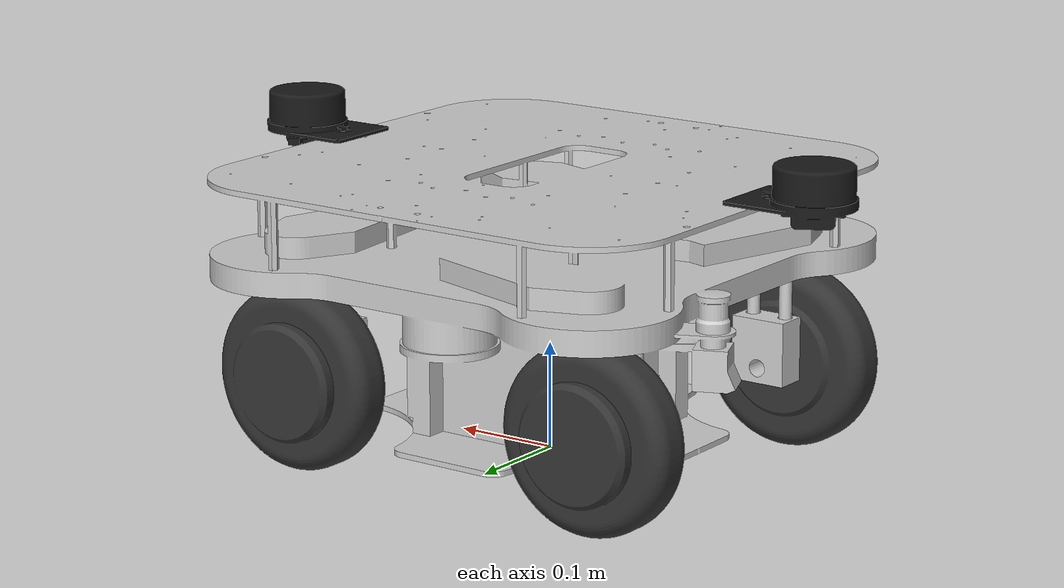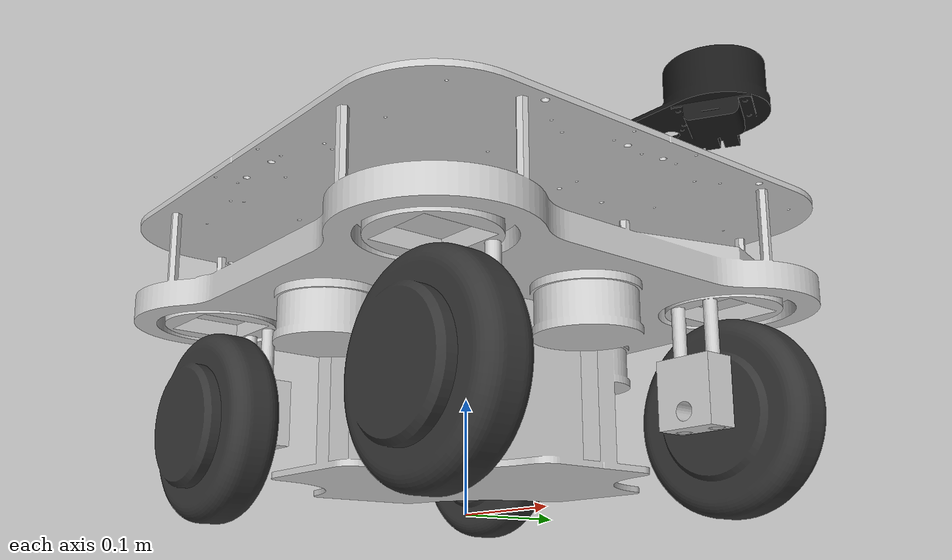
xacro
<?xml version="1.0"?>
<robot name="x120a" xmlns:xacro="http://www.ros.org/wiki/xacro">

  <!-- Suspension values from the selected Isaac model, in SI units. -->
  <xacro:property name="suspension_stiffness" value="58800"/>
  <xacro:property name="suspension_damping" value="300.0"/>
  <xacro:property name="suspension_friction" value="0.5"/>
  <xacro:property name="suspension_stroke" value="0.0135"/>
  <xacro:property name="suspension_force" value="793.8"/>
  <!-- Actuator values from the selected Isaac USD, SI units. -->
  <xacro:property name="wheel_max_torque" value="18.0"/>
  <xacro:property name="wheel_max_velocity" value="25.8823529412"/>
  <xacro:property name="wheel_max_acceleration" value="19.4117647059"/>
  <xacro:property name="wheel_drive_damping" value="1000.0"/>
  <xacro:property name="steering_max_torque" value="5.325"/>
  <xacro:property name="steering_max_velocity" value="18.8495559215"/>
  <xacro:property name="steering_max_acceleration" value="56.5486677646"/>
  <xacro:property name="steering_drive_damping" value="1000.0"/>
  <xacro:property name="steering_position_p_gain" value="12.56"/>

   <xacro:include filename="$(find fwdsrover_description)/urdf/materials.xacro"/>
   <xacro:include filename="$(find fwdsrover_description)/urdf/actuators.xacro"/>
   <xacro:include filename="$(find fwdsrover_description)/urdf/x120a.gazebo"/>

  <!-- Options are selected here, without launch/YAML tuning overrides. -->
  <xacro:property name="enable_tg30" value="true"/>
  <xacro:if value="${enable_tg30}">
    <xacro:include filename="$(find vs_rover_options_description)/urdf/lrf/tg30_x120a.xacro"/>
  </xacro:if>
  <!-- OPTION: Bumper -->
  <!-- A camera-stay model has not been supplied for this rover. -->

  <link name="base_footprint"/>

  <link name="base_link">
    <inertial>
      <origin xyz="0 0 0.075"/>
      <mass value="31.499998"/>
      <inertia
        ixx="0.12128076034316"
        ixy="0.00120136894281"
        ixz="-0.00048291958805"
        iyy="0.12342190392259"
        iyz="-0.00033717869722"
        izz="0.13609112422642"/>
    </inertial>
    <visual>
      <geometry>
        <mesh filename="package://fwdsrover_description/meshes/x120a/base_link.stl"
              scale="0.001 0.001 0.001"/>
      </geometry>
      <material name="silver"/>
    </visual>
    <collision>
      <origin xyz="0 0 0.206"/>
      <geometry>
        <box size="0.476 0.476 0.070"/>
      </geometry>
    </collision>
  </link>

  <joint name="base_joint" type="fixed">
    <origin xyz="0 0 0.024"/>
    <parent link="base_footprint"/>
    <child link="base_link"/>
  </joint>

  <!-- Auto inertia macros -->

  <!-- Solid cylinder inertia (axis Z) -->
  <xacro:macro name="inertia_cylinder" params="m r h">
    <xacro:property name="Izz" value="${0.5 * m * r * r}"/>
    <xacro:property name="Ixx" value="${(1.0/12.0) * m * (3*r*r + h*h)}"/>
    <inertia ixx="${Ixx}" ixy="0" ixz="0"
             iyy="${Ixx}" iyz="0"
             izz="${Izz}"/>
  </xacro:macro>

  <!-- Solid box inertia -->
  <xacro:macro name="inertia_box" params="m x y z">
    <inertia
      ixx="${(1.0/12.0) * m * (y*y + z*z)}"
      ixy="0" ixz="0"
      iyy="${(1.0/12.0) * m * (x*x + z*z)}"
      iyz="0"
      izz="${(1.0/12.0) * m * (x*x + y*y)}"/>
  </xacro:macro>

  <!-- Link macros (auto inertia) -->

  <!-- Joint base: cylinder -->
  <xacro:macro name="joint_link" params="name m r h">
    <link name="${name}">
      <inertial>
        <origin xyz="0 0 -0.05"/>
        <mass value="${m}"/>
        <xacro:inertia_cylinder m="${m}" r="${r}" h="${h}"/>
      </inertial>
      <visual>
        <geometry>
          <mesh filename="package://fwdsrover_description/meshes/x120a/joint.stl"
                scale="0.001 0.001 0.001"/>
        </geometry>
        <material name="silver"/>
      </visual>
      <collision>
        <origin xyz="0 0 -0.007"/>
        <geometry>
          <cylinder radius="${r}" length="${h}"/>
        </geometry>
      </collision>
    </link>
  </xacro:macro>

  <!-- Suspension: box -->
  <xacro:macro name="sus_link" params="name m x y z">
    <link name="${name}">
      <inertial>
        <origin xyz="0 0 0.026"/>
        <mass value="${m}"/>
        <xacro:inertia_box m="${m}" x="${x}" y="${y}" z="${z}"/>
      </inertial>
      <visual>
        <geometry>
          <mesh filename="package://fwdsrover_description/meshes/x120a/sus.stl"
                scale="0.001 0.001 0.001"/>
        </geometry>
        <material name="silver"/>
      </visual>
      <collision>
        <origin xyz="0 0 0.03"/>
        <geometry>
          <box size="${x} ${y} ${z}"/>
        </geometry>
      </collision>
    </link>
  </xacro:macro>

  <!-- Joint macros -->

  <xacro:macro name="steering_joint" params="name parent child xyz rpy">
    <joint name="${name}" type="revolute">
      <origin xyz="${xyz}" rpy="${rpy}"/>
      <axis xyz="0 0 1"/>
      <parent link="${parent}"/>
      <child link="${child}"/>
      <limit lower="-6.28319" upper="6.28319" effort="${steering_max_torque}" velocity="${steering_max_velocity}"/>
      <dynamics damping="0.1"/>
    </joint>
  </xacro:macro>

  <xacro:macro name="sus_joint" params="name parent child">
    <joint name="${name}" type="prismatic">
      <origin xyz="0 -0.045 -0.122"/>
      <axis xyz="0 0 1"/>
      <parent link="${parent}"/>
      <child link="${child}"/>
      <limit lower="0.0" upper="${suspension_stroke}" effort="${suspension_force}" velocity="1.0"/>
      <dynamics damping="${suspension_damping}" friction="${suspension_friction}"/>
    </joint>
  </xacro:macro>

  <xacro:macro name="wheel_joint" params="name parent child axis_z">
    <joint name="${name}" type="continuous">
      <origin xyz="0 0.018 0.014" rpy="${radians(-90)} 0 0"/>
      <axis xyz="0 0 ${axis_z}"/>
      <parent link="${parent}"/>
      <child link="${child}"/>
      <limit velocity="${wheel_max_velocity}" effort="${wheel_max_torque}"/>
      <dynamics damping="0.3" friction="0.5"/>
    </joint>
  </xacro:macro>

  <!-- Wheel unit (all auto inertia except base) -->

  <xacro:macro name="wheel_unit"
    params="prefix steering_xyz steering_rpy wheel_axis_z">

    <!-- constants (from original model) -->
    <xacro:property name="joint_m" value="0.2"/>
    <xacro:property name="joint_r" value="0.05"/>
    <xacro:property name="joint_h" value="0.014"/>

    <xacro:property name="sus_m" value="0.1"/>
    <xacro:property name="sus_x" value="0.05"/>
    <xacro:property name="sus_y" value="0.03"/>
    <xacro:property name="sus_z" value="0.06"/>

    <xacro:property name="wheel_m" value="3.0"/>
    <xacro:property name="wheel_r" value="0.085"/>
    <xacro:property name="wheel_h" value="0.045"/>

    <xacro:joint_link name="${prefix}_joint_1"
                      m="${joint_m}" r="${joint_r}" h="${joint_h}"/>

    <xacro:sus_link name="${prefix}_sus_1"
                    m="${sus_m}" x="${sus_x}" y="${sus_y}" z="${sus_z}"/>

    <link name="${prefix}_wheel_1">
      <inertial>
        <origin xyz="0 0 0.026"/>
        <mass value="${wheel_m}"/>
        <xacro:inertia_cylinder m="${wheel_m}" r="${wheel_r}" h="${wheel_h}"/>
      </inertial>
      <visual>
        <geometry>
          <mesh filename="package://fwdsrover_description/meshes/x120a/wheel.stl"
                scale="0.001 0.001 0.001"/>
        </geometry>
        <material name="dark_grey"/>
      </visual>
      <collision>
        <origin xyz="0 0 0.027"/>
        <geometry>
          <cylinder radius="${wheel_r}" length="${wheel_h}"/>
        </geometry>
      </collision>
    </link>

    <xacro:steering_joint
      name="${prefix}_steering_joint"
      parent="base_link"
      child="${prefix}_joint_1"
      xyz="${steering_xyz}"
      rpy="${steering_rpy}"/>

    <xacro:sus_joint
      name="${prefix}_sus_joint"
      parent="${prefix}_joint_1"
      child="${prefix}_sus_1"/>

    <xacro:wheel_joint
      name="${prefix}_wheel_joint"
      parent="${prefix}_sus_1"
      child="${prefix}_wheel_1"
      axis_z="${wheel_axis_z}"/>

  </xacro:macro>

  <!-- Wheel instances -->

  <xacro:wheel_unit prefix="front_left"
                    steering_xyz="0.16 0.16 0.163"
                    steering_rpy="0 0 0"
                    wheel_axis_z="1"/>

  <xacro:wheel_unit prefix="front_right"
                    steering_xyz="0.16 -0.16 0.163"
                    steering_rpy="0 0 ${radians(180)}"
                    wheel_axis_z="-1"/>

  <xacro:wheel_unit prefix="back_right"
                    steering_xyz="-0.16 -0.16 0.163"
                    steering_rpy="0 0 ${radians(180)}"
                    wheel_axis_z="-1"/>

  <xacro:wheel_unit prefix="back_left"
                    steering_xyz="-0.16 0.16 0.163"
                    steering_rpy="0 0 0"
                    wheel_axis_z="1"/>

</robot>

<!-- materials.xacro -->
<robot name="materials" xmlns:xacro="http://www.ros.org/wiki/xacro">

  <material name="silver">
    <color rgba="0.800 0.800 0.800 1.000" />
  </material>

  <material name="dark_silver">
    <color rgba="0.400 0.400 0.400 1.000" />
  </material>

  <material name="dark_grey">
    <color rgba="0.200 0.200 0.200 1.000" />
  </material>

  <material name="black">
    <color rgba="0.100 0.100 0.100 1.000" />
  </material>

</robot>

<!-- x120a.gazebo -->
<robot name="x120a" xmlns:xacro="http://www.ros.org/wiki/xacro">

  <xacro:property name="body_color"  value="Gazebo/Silver"/>
  <xacro:property name="wheel_color" value="Gazebo/DarkGrey"/>

  <gazebo reference="base_link">
    <material>Gazebo/Silver</material>
    <mu1>0.2</mu1>
    <mu2>0.2</mu2>
    <self_collide>false</self_collide>
    <turnGravityOff>false</turnGravityOff>
  </gazebo>

  <xacro:macro name="gazebo_steering" params="joint">
    <gazebo reference="${joint}">
      <material>${body_color}</material>
      <implicitSpringDamper>false</implicitSpringDamper>
      <erp>1.0</erp>
      <cfm>0.0</cfm>
      <limit>
        <erp>1.0</erp>
        <cfm>0.0</cfm>
      </limit>
      <stop_erp>0.99</stop_erp>
      <stop_cfm>0.0</stop_cfm>
    </gazebo>
  </xacro:macro>

  <xacro:macro name="gazebo_suspension" params="joint">
    <gazebo reference="${joint}">
      <implicitSpringDamper>false</implicitSpringDamper>
      <springReference>0.0</springReference>
      <springStiffness>${suspension_stiffness}</springStiffness>
    </gazebo>
  </xacro:macro>

  <xacro:macro name="gazebo_wheel" params="link">
    <gazebo reference="${link}">
      <material>${wheel_color}</material>
      <mu1>0.8</mu1>
      <mu2>0.4</mu2>
      <slip1>0.01</slip1>
      <slip2>0.01</slip2>
      <kp>1e6</kp>
      <kd>1.0</kd>
    </gazebo>
  </xacro:macro>

  <xacro:gazebo_steering joint="front_left_steering_joint"/>
  <xacro:gazebo_steering joint="front_right_steering_joint"/>
  <xacro:gazebo_steering joint="back_right_steering_joint"/>
  <xacro:gazebo_steering joint="back_left_steering_joint"/>

  <!-- Suspension -->
  <xacro:gazebo_suspension joint="front_left_sus_joint"/>
  <xacro:gazebo_suspension joint="front_right_sus_joint"/>
  <xacro:gazebo_suspension joint="back_right_sus_joint"/>
  <xacro:gazebo_suspension joint="back_left_sus_joint"/>

  <!-- Wheels -->
  <xacro:gazebo_wheel link="front_left_wheel_1"/>
  <xacro:gazebo_wheel link="front_right_wheel_1"/>
  <xacro:gazebo_wheel link="back_right_wheel_1"/>
  <xacro:gazebo_wheel link="back_left_wheel_1"/>

</robot>

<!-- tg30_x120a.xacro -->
<robot name="lrf_tg30_x120a" xmlns:xacro="http://ros.org/wiki/xacro">
  <xacro:include filename="$(find vs_rover_options_description)/urdf/lrf/tg30_x120a.gazebo" />

  <!-- placement of TG30 on Megarover Ver.3.0 -->
  <!-- the mesh origin is at centerline of laser, x-axis facing forward -->
  <xacro:property name="tg30_lrf_front_x_offset" value="0.2831" />
  <xacro:property name="tg30_lrf_front_y_offset" value="0.0" />
  <xacro:property name="tg30_lrf_front_z_offset" value="0.272" />
  <xacro:property name="tg30_lrf_back_x_offset" value="-0.2769" />
  <xacro:property name="tg30_lrf_back_y_offset" value="0.0" />
  <xacro:property name="tg30_lrf_back_z_offset" value="0.272" />
  <xacro:property name="tg30_center_of_mass_x" value="-0.004299" />
  <xacro:property name="tg30_center_of_mass_y" value="-0.000337" />
  <xacro:property name="tg30_center_of_mass_z" value="-0.018037" />

  <!-- front LRF sensor joints and links -->
  <joint name="front_lrf_joint" type="fixed">
    <parent link="base_link" />
    <child link="front_lrf_link" />
    <origin xyz="${tg30_lrf_front_x_offset} ${tg30_lrf_front_y_offset} ${tg30_lrf_front_z_offset}" rpy="0 0 0" />
  </joint>

  <link name="front_lrf_link">
    <inertial>
      <origin xyz="${tg30_center_of_mass_x} ${tg30_center_of_mass_y} ${tg30_center_of_mass_z}" rpy="0 0 0" />
      <mass value="0.200" />
      <inertia ixx="0.0001205" iyy="0.0001561" izz="0.0001977"
        ixy="0.00" iyz="0.00"
        ixz="0.00" />
    </inertial>
    <visual>
      <origin xyz="0 0 0" rpy="0 0 0" />
      <geometry>
        <mesh filename="package://vs_rover_options_description/meshes/lrf/tg30.stl" scale="0.001 0.001 0.001" />
      </geometry>
      <material name="black" />
    </visual>
    <collision>
      <origin xyz="0 0 0" rpy="0 0 0" />
      <geometry>
        <mesh filename="package://vs_rover_options_description/meshes/lrf/tg30.stl" scale="0.001 0.001 0.001" />
      </geometry>
    </collision>
  </link>

  <!-- back LRF sensor joints and links -->
  <joint name="back_lrf_joint" type="fixed">
    <parent link="base_link" />
    <child link="back_lrf_link" />
    <origin xyz="${tg30_lrf_back_x_offset} ${tg30_lrf_back_y_offset} ${tg30_lrf_back_z_offset}" rpy="0 0 ${pi}" />
  </joint>

  <link name="back_lrf_link">
    <inertial>
      <origin xyz="${tg30_center_of_mass_x} ${tg30_center_of_mass_y} ${tg30_center_of_mass_z}" rpy="0 0 0" />
      <mass value="0.200" />
      <inertia ixx="0.0001205" iyy="0.0001561" izz="0.0001977"
        ixy="0.00" iyz="0.00"
        ixz="0.00" />
    </inertial>
    <visual>
      <origin xyz="0 0 0" rpy="0 0 0" />
      <geometry>
        <mesh filename="package://vs_rover_options_description/meshes/lrf/tg30.stl" scale="0.001 0.001 0.001" />
      </geometry>
      <material name="black" />
    </visual>
    <collision>
      <origin xyz="0 0 0" rpy="0 0 0" />
      <geometry>
        <mesh filename="package://vs_rover_options_description/meshes/lrf/tg30.stl" scale="0.001 0.001 0.001" />
      </geometry>
    </collision>
  </link>

</robot>

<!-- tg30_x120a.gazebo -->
<robot name="lrf_tg30_x120a" xmlns:xacro="http://www.ros.org/wiki/xacro">

  <xacro:arg name="front_laser_visual" default="false" />
  <xacro:arg name="back_laser_visual" default="false" />

  <xacro:property name="lrf_color" value="Gazebo/FlatBlack" />
  <xacro:property name="DEG_TO_RAD" value="0.01745329251994329577" />
  <xacro:property name="LRF_ANGLE" value="172" />

  <gazebo reference="front_lrf_link">
    <material>${lrf_color}</material>
    <selfCollide>true</selfCollide>
    <sensor name="tg30_lidar_front" type="ray">
        <always_on>true</always_on>
        <visualize>$(arg front_laser_visual)</visualize>
        <pose>0 0 0 0 0 0</pose>
        <update_rate>12</update_rate>
        <ray>
          <scan>
            <horizontal>
              <samples>360</samples>
              <resolution>1.0</resolution>
              <min_angle>${-LRF_ANGLE*DEG_TO_RAD}</min_angle>
              <max_angle>${ LRF_ANGLE*DEG_TO_RAD}</max_angle>
            </horizontal>
          </scan>
          <range>
            <min>0.05</min>
            <max>30.0</max>
            <resolution>0.01</resolution>
          </range>
          <noise>
            <type>gaussian</type>
            <mean>0.0</mean>
            <stddev>0.01</stddev>
          </noise>
        </ray>
        <plugin name="x120a_front_laserscan" filename="libgazebo_ros_ray_sensor.so">
          <ros>
            <remapping>~/out:=scan</remapping>
          </ros>
          <output_type>sensor_msgs/LaserScan</output_type>
          <frame_name>front_lrf_link</frame_name>
        </plugin>
      </sensor>
  </gazebo>

  <gazebo reference="back_lrf_link">
    <material>${lrf_color}</material>
    <selfCollide>true</selfCollide>
    <sensor name="tg30_lidar_back" type="ray">
        <always_on>true</always_on>
        <visualize>$(arg back_laser_visual)</visualize>
        <pose>0 0 0 0 0 0</pose>
        <update_rate>12</update_rate>
        <ray>
          <scan>
            <horizontal>
              <samples>360</samples>
              <resolution>1.0</resolution>
              <min_angle>${-LRF_ANGLE*DEG_TO_RAD}</min_angle>
              <max_angle>${ LRF_ANGLE*DEG_TO_RAD}</max_angle>
            </horizontal>
          </scan>
          <range>
            <min>0.05</min>
            <max>30.0</max>
            <resolution>0.01</resolution>
          </range>
          <noise>
            <type>gaussian</type>
            <mean>0.0</mean>
            <stddev>0.01</stddev>
          </noise>
        </ray>
        <plugin name="x120a_back_laserscan" filename="libgazebo_ros_ray_sensor.so">
          <ros>
            <remapping>~/out:=back_scan</remapping>
          </ros>
          <output_type>sensor_msgs/LaserScan</output_type>
          <frame_name>back_lrf_link</frame_name>
        </plugin>
      </sensor>
  </gazebo>

</robot>
